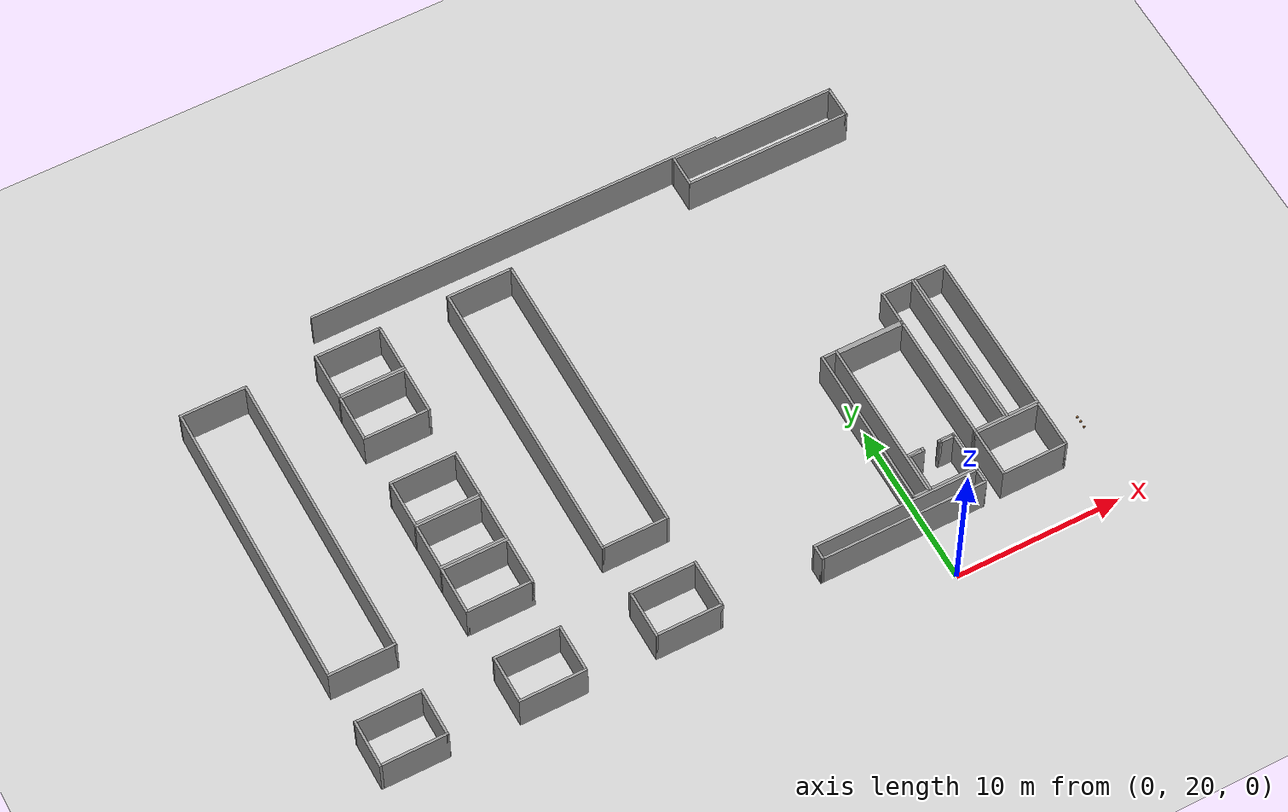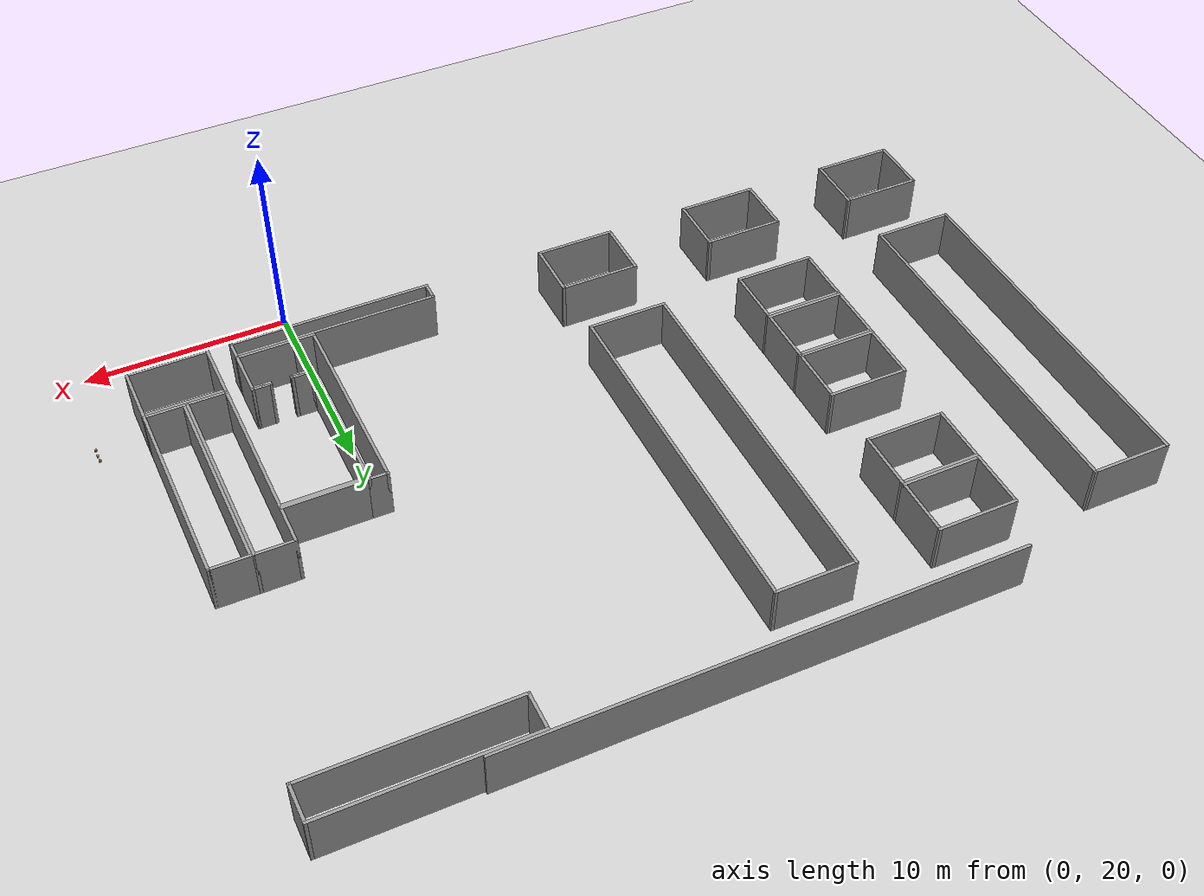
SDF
<sdf version="1.6">
 <world name="default">
  <model name="ground_plane">
   <static>1</static>
   <link name="link">
    <collision name="collision">
     <geometry><plane><normal>0 0 1</normal><size>105 105</size></plane></geometry>
     <surface>
      <contact><collide_bitmask>65535</collide_bitmask></contact>
      <friction><ode><mu>100</mu><mu2>50</mu2></ode></friction>
     </surface>
    </collision>
    <visual name="visual">
     <cast_shadows>0</cast_shadows>
     <geometry><plane><normal>0 0 1</normal><size>105 105</size></plane></geometry>
     <material>
      <script><uri>file://media/materials/scripts/gazebo.material</uri><name>Gazebo/Grey</name></script>
     </material>
    </visual>
   </link>
  </model>
  <model name="wall_25m_4">
   <pose>-10.9942 49.3463 0 0 -0 0</pose>
   <link name="Wall_28">
    <collision name="Wall_28_Collision">
     <geometry><box><size>25 0.15 2.5</size></box></geometry>
     <pose>0 0 1.25 0 -0 0</pose>
    </collision>
    <visual name="Wall_28_Visual">
     <pose>0 0 1.25 0 -0 0</pose>
     <geometry><box><size>25 0.15 2.5</size></box></geometry>
     <material>
      <script><uri>file://media/materials/scripts/gazebo.material</uri><name>Gazebo/Grey</name></script>
      <ambient>1 1 1 1</ambient>
     </material>
     <meta><layer>0</layer></meta>
    </visual>
   </link>
   <static>1</static>
  </model>
  <model name="base18x4_3">
   <pose>-30.4275 38.1058 0 0 -0 0</pose>
   <link name="Wall_6">
    <collision name="Wall_6_Collision">
     <geometry><box><size>18 0.15 2.5</size></box></geometry>
     <pose>0 0 1.25 0 -0 0</pose>
    </collision>
    <visual name="Wall_6_Visual">
     <pose>0 0 1.25 0 -0 0</pose>
     <geometry><box><size>18 0.15 2.5</size></box></geometry>
     <material>
      <script><uri>file://media/materials/scripts/gazebo.material</uri><name>Gazebo/Grey</name></script>
      <ambient>1 1 1 1</ambient>
     </material>
     <meta><layer>0</layer></meta>
    </visual>
    <pose>-1.925 0 0 0 -0 -1.5708</pose>
   </link>
   <link name="Wall_7">
    <collision name="Wall_7_Collision">
     <geometry><box><size>4 0.15 2.5</size></box></geometry>
     <pose>0 0 1.25 0 -0 0</pose>
    </collision>
    <visual name="Wall_7_Visual">
     <pose>0 0 1.25 0 -0 0</pose>
     <geometry><box><size>4 0.15 2.5</size></box></geometry>
     <material>
      <script><uri>file://media/materials/scripts/gazebo.material</uri><name>Gazebo/Grey</name></script>
      <ambient>1 1 1 1</ambient>
     </material>
     <meta><layer>0</layer></meta>
    </visual>
    <pose>0 -8.925 0 0 -0 0</pose>
   </link>
   <link name="Wall_8">
    <collision name="Wall_8_Collision">
     <geometry><box><size>18 0.15 2.5</size></box></geometry>
     <pose>0 0 1.25 0 -0 0</pose>
    </collision>
    <visual name="Wall_8_Visual">
     <pose>0 0 1.25 0 -0 0</pose>
     <geometry><box><size>18 0.15 2.5</size></box></geometry>
     <material>
      <script><uri>file://media/materials/scripts/gazebo.material</uri><name>Gazebo/Grey</name></script>
      <ambient>1 1 1 1</ambient>
     </material>
     <meta><layer>0</layer></meta>
    </visual>
    <pose>1.925 0 0 0 -0 1.5708</pose>
   </link>
   <link name="Wall_9">
    <collision name="Wall_9_Collision">
     <geometry><box><size>4 0.15 2.5</size></box></geometry>
     <pose>0 0 1.25 0 -0 0</pose>
    </collision>
    <visual name="Wall_9_Visual">
     <pose>0 0 1.25 0 -0 0</pose>
     <geometry><box><size>4 0.15 2.5</size></box></geometry>
     <material>
      <script><uri>file://media/materials/scripts/gazebo.material</uri><name>Gazebo/Grey</name></script>
      <ambient>1 1 1 1</ambient>
     </material>
     <meta><layer>0</layer></meta>
    </visual>
    <pose>0 8.925 0 0 -0 3.14159</pose>
   </link>
   <static>1</static>
  </model>
  <model name="base3x4_29">
   <pose>6.40581 24.5341 0 0 -0 0</pose>
   <link name="Wall_18">
    <collision name="Wall_18_Collision">
     <geometry><box><size>3 0.15 2.5</size></box></geometry>
     <pose>0 0 1.25 0 -0 0</pose>
    </collision>
    <visual name="Wall_18_Visual">
     <pose>0 0 1.25 0 -0 0</pose>
     <geometry><box><size>3 0.15 2.5</size></box></geometry>
     <material>
      <script><uri>file://media/materials/scripts/gazebo.material</uri><name>Gazebo/Grey</name></script>
      <ambient>1 1 1 1</ambient>
     </material>
     <meta><layer>0</layer></meta>
    </visual>
    <pose>-1.925 -0 0 0 -0 -1.5708</pose>
   </link>
   <link name="Wall_19">
    <collision name="Wall_19_Collision">
     <geometry><box><size>4 0.15 2.5</size></box></geometry>
     <pose>0 0 1.25 0 -0 0</pose>
    </collision>
    <visual name="Wall_19_Visual">
     <pose>0 0 1.25 0 -0 0</pose>
     <geometry><box><size>4 0.15 2.5</size></box></geometry>
     <material>
      <script><uri>file://media/materials/scripts/gazebo.material</uri><name>Gazebo/Grey</name></script>
      <ambient>1 1 1 1</ambient>
     </material>
     <meta><layer>0</layer></meta>
    </visual>
    <pose>-0 -1.425 0 0 -0 0</pose>
   </link>
   <link name="Wall_20">
    <collision name="Wall_20_Collision">
     <geometry><box><size>3 0.15 2.5</size></box></geometry>
     <pose>0 0 1.25 0 -0 0</pose>
    </collision>
    <visual name="Wall_20_Visual">
     <pose>0 0 1.25 0 -0 0</pose>
     <geometry><box><size>3 0.15 2.5</size></box></geometry>
     <material>
      <script><uri>file://media/materials/scripts/gazebo.material</uri><name>Gazebo/Grey</name></script>
      <ambient>1 1 1 1</ambient>
     </material>
     <meta><layer>0</layer></meta>
    </visual>
    <pose>1.925 -0 0 0 -0 1.5708</pose>
   </link>
   <link name="Wall_21">
    <collision name="Wall_21_Collision">
     <geometry><box><size>4 0.15 2.5</size></box></geometry>
     <pose>0 0 1.25 0 -0 0</pose>
    </collision>
    <visual name="Wall_21_Visual">
     <pose>0 0 1.25 0 -0 0</pose>
     <geometry><box><size>4 0.15 2.5</size></box></geometry>
     <material>
      <script><uri>file://media/materials/scripts/gazebo.material</uri><name>Gazebo/Grey</name></script>
      <ambient>1 1 1 1</ambient>
     </material>
     <meta><layer>0</layer></meta>
    </visual>
    <pose>-0 1.425 0 0 -0 3.14159</pose>
   </link>
   <static>1</static>
  </model>
  <model name="base10x2_0">
   <pose>5.40521 31.0336 0 0 -0 0</pose>
   <link name="Wall_20">
    <collision name="Wall_20_Collision">
     <geometry><box><size>2 0.15 2.5</size></box></geometry>
     <pose>0 0 1.25 0 -0 0</pose>
    </collision>
    <visual name="Wall_20_Visual">
     <pose>0 0 1.25 0 -0 0</pose>
     <geometry><box><size>2 0.15 2.5</size></box></geometry>
     <material>
      <script><uri>file://media/materials/scripts/gazebo.material</uri><name>Gazebo/Grey</name></script>
      <ambient>1 1 1 1</ambient>
     </material>
     <meta><layer>0</layer></meta>
    </visual>
    <pose>0 4.925 0 0 -0 0</pose>
   </link>
   <link name="Wall_21">
    <collision name="Wall_21_Collision">
     <geometry><box><size>10 0.15 2.5</size></box></geometry>
     <pose>0 0 1.25 0 -0 0</pose>
    </collision>
    <visual name="Wall_21_Visual">
     <pose>0 0 1.25 0 -0 0</pose>
     <geometry><box><size>10 0.15 2.5</size></box></geometry>
     <material>
      <script><uri>file://media/materials/scripts/gazebo.material</uri><name>Gazebo/Grey</name></script>
      <ambient>1 1 1 1</ambient>
     </material>
     <meta><layer>0</layer></meta>
    </visual>
    <pose>0.925 -0 0 0 -0 -1.5708</pose>
   </link>
   <link name="Wall_22">
    <collision name="Wall_22_Collision">
     <geometry><box><size>2 0.15 2.5</size></box></geometry>
     <pose>0 0 1.25 0 -0 0</pose>
    </collision>
    <visual name="Wall_22_Visual">
     <pose>0 0 1.25 0 -0 0</pose>
     <geometry><box><size>2 0.15 2.5</size></box></geometry>
     <material>
      <script><uri>file://media/materials/scripts/gazebo.material</uri><name>Gazebo/Grey</name></script>
      <ambient>1 1 1 1</ambient>
     </material>
     <meta><layer>0</layer></meta>
    </visual>
    <pose>0 -4.925 0 0 -0 3.14159</pose>
   </link>
   <link name="Wall_23">
    <collision name="Wall_23_Collision">
     <geometry><box><size>10 0.15 2.5</size></box></geometry>
     <pose>0 0 1.25 0 -0 0</pose>
    </collision>
    <visual name="Wall_23_Visual">
     <pose>0 0 1.25 0 -0 0</pose>
     <geometry><box><size>10 0.15 2.5</size></box></geometry>
     <material>
      <script><uri>file://media/materials/scripts/gazebo.material</uri><name>Gazebo/Grey</name></script>
      <ambient>1 1 1 1</ambient>
     </material>
     <meta><layer>0</layer></meta>
    </visual>
    <pose>-0.925 -0 0 0 -0 1.5708</pose>
   </link>
   <static>1</static>
  </model>
  <model name="wood_cube_10cm_3">
   <link name="link">
    <pose>0 0 0.05 0 -0 0</pose>
    <inertial>
     <mass>0.5167</mass>
     <inertia>
      <ixx>0.000861167</ixx>
      <ixy>0</ixy>
      <ixz>0</ixz>
      <iyy>0.000861167</iyy>
      <iyz>0</iyz>
      <izz>0.000861167</izz>
     </inertia>
    </inertial>
    <collision name="collision">
     <geometry><box><size>0.1 0.1 0.1</size></box></geometry>
     <surface>
      <contact>
       <poissons_ratio>0.347</poissons_ratio>
       <elastic_modulus>8.8e+09</elastic_modulus>
       <ode><kp>100000</kp><kd>100</kd><max_vel>100</max_vel><min_depth>0.001</min_depth></ode>
      </contact>
      <friction>
       <torsional>
        <coefficient>1</coefficient>
        <use_patch_radius>0</use_patch_radius>
        <surface_radius>0.01</surface_radius>
       </torsional>
      </friction>
     </surface>
    </collision>
    <visual name="visual">
     <geometry><box><size>0.1 0.1 0.1</size></box></geometry>
     <material>
      <script><uri>file://media/materials/scripts/gazebo.material</uri><name>Gazebo/Wood</name></script>
     </material>
    </visual>
   </link>
   <pose>10.6607 24.7274 -0.001013 0 0 -1.09026</pose>
  </model>
  <model name="wood_cube_10cm_4">
   <link name="link">
    <pose>0 0 0.05 0 -0 0</pose>
    <inertial>
     <mass>0.5167</mass>
     <inertia>
      <ixx>0.000861167</ixx>
      <ixy>0</ixy>
      <ixz>0</ixz>
      <iyy>0.000861167</iyy>
      <iyz>0</iyz>
      <izz>0.000861167</izz>
     </inertia>
    </inertial>
    <collision name="collision">
     <geometry><box><size>0.1 0.1 0.1</size></box></geometry>
     <surface>
      <contact>
       <poissons_ratio>0.347</poissons_ratio>
       <elastic_modulus>8.8e+09</elastic_modulus>
       <ode><kp>100000</kp><kd>100</kd><max_vel>100</max_vel><min_depth>0.001</min_depth></ode>
      </contact>
      <friction>
       <torsional>
        <coefficient>1</coefficient>
        <use_patch_radius>0</use_patch_radius>
        <surface_radius>0.01</surface_radius>
       </torsional>
      </friction>
     </surface>
    </collision>
    <visual name="visual">
     <geometry><box><size>0.1 0.1 0.1</size></box></geometry>
     <material>
      <script><uri>file://media/materials/scripts/gazebo.material</uri><name>Gazebo/Wood</name></script>
     </material>
    </visual>
   </link>
   <pose>10.6691 25.1156 -0.001013 0 -0 0</pose>
  </model>
  <model name="wood_cube_10cm_5">
   <link name="link">
    <pose>0 0 0.05 0 -0 0</pose>
    <inertial>
     <mass>0.5167</mass>
     <inertia>
      <ixx>0.000861167</ixx>
      <ixy>0</ixy>
      <ixz>0</ixz>
      <iyy>0.000861167</iyy>
      <iyz>0</iyz>
      <izz>0.000861167</izz>
     </inertia>
    </inertial>
    <collision name="collision">
     <geometry><box><size>0.1 0.1 0.1</size></box></geometry>
     <surface>
      <contact>
       <poissons_ratio>0.347</poissons_ratio>
       <elastic_modulus>8.8e+09</elastic_modulus>
       <ode><kp>100000</kp><kd>100</kd><max_vel>100</max_vel><min_depth>0.001</min_depth></ode>
      </contact>
      <friction>
       <torsional>
        <coefficient>1</coefficient>
        <use_patch_radius>0</use_patch_radius>
        <surface_radius>0.01</surface_radius>
       </torsional>
      </friction>
     </surface>
    </collision>
    <visual name="visual">
     <geometry><box><size>0.1 0.1 0.1</size></box></geometry>
     <material>
      <script><uri>file://media/materials/scripts/gazebo.material</uri><name>Gazebo/Wood</name></script>
     </material>
    </visual>
   </link>
   <pose>10.6522 25.4397 -0.001013 0 -0 0</pose>
  </model>
  <model name="base10x2_1">
   <pose>7.40132 31.0288 0 0 -0 0</pose>
   <link name="Wall_20">
    <collision name="Wall_20_Collision">
     <geometry><box><size>2 0.15 2.5</size></box></geometry>
     <pose>0 0 1.25 0 -0 0</pose>
    </collision>
    <visual name="Wall_20_Visual">
     <pose>0 0 1.25 0 -0 0</pose>
     <geometry><box><size>2 0.15 2.5</size></box></geometry>
     <material>
      <script><uri>file://media/materials/scripts/gazebo.material</uri><name>Gazebo/Grey</name></script>
      <ambient>1 1 1 1</ambient>
     </material>
     <meta><layer>0</layer></meta>
    </visual>
    <pose>0 4.925 0 0 -0 0</pose>
   </link>
   <link name="Wall_21">
    <collision name="Wall_21_Collision">
     <geometry><box><size>10 0.15 2.5</size></box></geometry>
     <pose>0 0 1.25 0 -0 0</pose>
    </collision>
    <visual name="Wall_21_Visual">
     <pose>0 0 1.25 0 -0 0</pose>
     <geometry><box><size>10 0.15 2.5</size></box></geometry>
     <material>
      <script><uri>file://media/materials/scripts/gazebo.material</uri><name>Gazebo/Grey</name></script>
      <ambient>1 1 1 1</ambient>
     </material>
     <meta><layer>0</layer></meta>
    </visual>
    <pose>0.925 -0 0 0 -0 -1.5708</pose>
   </link>
   <link name="Wall_22">
    <collision name="Wall_22_Collision">
     <geometry><box><size>2 0.15 2.5</size></box></geometry>
     <pose>0 0 1.25 0 -0 0</pose>
    </collision>
    <visual name="Wall_22_Visual">
     <pose>0 0 1.25 0 -0 0</pose>
     <geometry><box><size>2 0.15 2.5</size></box></geometry>
     <material>
      <script><uri>file://media/materials/scripts/gazebo.material</uri><name>Gazebo/Grey</name></script>
      <ambient>1 1 1 1</ambient>
     </material>
     <meta><layer>0</layer></meta>
    </visual>
    <pose>0 -4.925 0 0 -0 3.14159</pose>
   </link>
   <link name="Wall_23">
    <collision name="Wall_23_Collision">
     <geometry><box><size>10 0.15 2.5</size></box></geometry>
     <pose>0 0 1.25 0 -0 0</pose>
    </collision>
    <visual name="Wall_23_Visual">
     <pose>0 0 1.25 0 -0 0</pose>
     <geometry><box><size>10 0.15 2.5</size></box></geometry>
     <material>
      <script><uri>file://media/materials/scripts/gazebo.material</uri><name>Gazebo/Grey</name></script>
      <ambient>1 1 1 1</ambient>
     </material>
     <meta><layer>0</layer></meta>
    </visual>
    <pose>-0.925 -0 0 0 -0 1.5708</pose>
   </link>
   <static>1</static>
  </model>
  <model name="base18x4_4">
   <pose>-14.4191 38.0948 0 0 -0 0</pose>
   <link name="Wall_6">
    <collision name="Wall_6_Collision">
     <geometry><box><size>18 0.15 2.5</size></box></geometry>
     <pose>0 0 1.25 0 -0 0</pose>
    </collision>
    <visual name="Wall_6_Visual">
     <pose>0 0 1.25 0 -0 0</pose>
     <geometry><box><size>18 0.15 2.5</size></box></geometry>
     <material>
      <script><uri>file://media/materials/scripts/gazebo.material</uri><name>Gazebo/Grey</name></script>
      <ambient>1 1 1 1</ambient>
     </material>
     <meta><layer>0</layer></meta>
    </visual>
    <pose>-1.925 0 0 0 -0 -1.5708</pose>
   </link>
   <link name="Wall_7">
    <collision name="Wall_7_Collision">
     <geometry><box><size>4 0.15 2.5</size></box></geometry>
     <pose>0 0 1.25 0 -0 0</pose>
    </collision>
    <visual name="Wall_7_Visual">
     <pose>0 0 1.25 0 -0 0</pose>
     <geometry><box><size>4 0.15 2.5</size></box></geometry>
     <material>
      <script><uri>file://media/materials/scripts/gazebo.material</uri><name>Gazebo/Grey</name></script>
      <ambient>1 1 1 1</ambient>
     </material>
     <meta><layer>0</layer></meta>
    </visual>
    <pose>0 -8.925 0 0 -0 0</pose>
   </link>
   <link name="Wall_8">
    <collision name="Wall_8_Collision">
     <geometry><box><size>18 0.15 2.5</size></box></geometry>
     <pose>0 0 1.25 0 -0 0</pose>
    </collision>
    <visual name="Wall_8_Visual">
     <pose>0 0 1.25 0 -0 0</pose>
     <geometry><box><size>18 0.15 2.5</size></box></geometry>
     <material>
      <script><uri>file://media/materials/scripts/gazebo.material</uri><name>Gazebo/Grey</name></script>
      <ambient>1 1 1 1</ambient>
     </material>
     <meta><layer>0</layer></meta>
    </visual>
    <pose>1.925 0 0 0 -0 1.5708</pose>
   </link>
   <link name="Wall_9">
    <collision name="Wall_9_Collision">
     <geometry><box><size>4 0.15 2.5</size></box></geometry>
     <pose>0 0 1.25 0 -0 0</pose>
    </collision>
    <visual name="Wall_9_Visual">
     <pose>0 0 1.25 0 -0 0</pose>
     <geometry><box><size>4 0.15 2.5</size></box></geometry>
     <material>
      <script><uri>file://media/materials/scripts/gazebo.material</uri><name>Gazebo/Grey</name></script>
      <ambient>1 1 1 1</ambient>
     </material>
     <meta><layer>0</layer></meta>
    </visual>
    <pose>0 8.925 0 0 -0 3.14159</pose>
   </link>
   <static>1</static>
  </model>
  <model name="base3x4_57">
   <pose>-14.4138 24.637 0 0 -0 0</pose>
   <link name="Wall_18">
    <collision name="Wall_18_Collision">
     <geometry><box><size>3 0.15 2.5</size></box></geometry>
     <pose>0 0 1.25 0 -0 0</pose>
    </collision>
    <visual name="Wall_18_Visual">
     <pose>0 0 1.25 0 -0 0</pose>
     <geometry><box><size>3 0.15 2.5</size></box></geometry>
     <material>
      <script><uri>file://media/materials/scripts/gazebo.material</uri><name>Gazebo/Grey</name></script>
      <ambient>1 1 1 1</ambient>
     </material>
     <meta><layer>0</layer></meta>
    </visual>
    <pose>-1.925 -0 0 0 -0 -1.5708</pose>
   </link>
   <link name="Wall_19">
    <collision name="Wall_19_Collision">
     <geometry><box><size>4 0.15 2.5</size></box></geometry>
     <pose>0 0 1.25 0 -0 0</pose>
    </collision>
    <visual name="Wall_19_Visual">
     <pose>0 0 1.25 0 -0 0</pose>
     <geometry><box><size>4 0.15 2.5</size></box></geometry>
     <material>
      <script><uri>file://media/materials/scripts/gazebo.material</uri><name>Gazebo/Grey</name></script>
      <ambient>1 1 1 1</ambient>
     </material>
     <meta><layer>0</layer></meta>
    </visual>
    <pose>-0 -1.425 0 0 -0 0</pose>
   </link>
   <link name="Wall_20">
    <collision name="Wall_20_Collision">
     <geometry><box><size>3 0.15 2.5</size></box></geometry>
     <pose>0 0 1.25 0 -0 0</pose>
    </collision>
    <visual name="Wall_20_Visual">
     <pose>0 0 1.25 0 -0 0</pose>
     <geometry><box><size>3 0.15 2.5</size></box></geometry>
     <material>
      <script><uri>file://media/materials/scripts/gazebo.material</uri><name>Gazebo/Grey</name></script>
      <ambient>1 1 1 1</ambient>
     </material>
     <meta><layer>0</layer></meta>
    </visual>
    <pose>1.925 -0 0 0 -0 1.5708</pose>
   </link>
   <link name="Wall_21">
    <collision name="Wall_21_Collision">
     <geometry><box><size>4 0.15 2.5</size></box></geometry>
     <pose>0 0 1.25 0 -0 0</pose>
    </collision>
    <visual name="Wall_21_Visual">
     <pose>0 0 1.25 0 -0 0</pose>
     <geometry><box><size>4 0.15 2.5</size></box></geometry>
     <material>
      <script><uri>file://media/materials/scripts/gazebo.material</uri><name>Gazebo/Grey</name></script>
      <ambient>1 1 1 1</ambient>
     </material>
     <meta><layer>0</layer></meta>
    </visual>
    <pose>-0 1.425 0 0 -0 3.14159</pose>
   </link>
   <static>1</static>
  </model>
  <model name="base3x4_80">
   <pose>-22.4387 24.5873 0 0 -0 0</pose>
   <link name="Wall_18">
    <collision name="Wall_18_Collision">
     <geometry><box><size>3 0.15 2.5</size></box></geometry>
     <pose>0 0 1.25 0 -0 0</pose>
    </collision>
    <visual name="Wall_18_Visual">
     <pose>0 0 1.25 0 -0 0</pose>
     <geometry><box><size>3 0.15 2.5</size></box></geometry>
     <material>
      <script><uri>file://media/materials/scripts/gazebo.material</uri><name>Gazebo/Grey</name></script>
      <ambient>1 1 1 1</ambient>
     </material>
     <meta><layer>0</layer></meta>
    </visual>
    <pose>-1.925 -0 0 0 -0 -1.5708</pose>
   </link>
   <link name="Wall_19">
    <collision name="Wall_19_Collision">
     <geometry><box><size>4 0.15 2.5</size></box></geometry>
     <pose>0 0 1.25 0 -0 0</pose>
    </collision>
    <visual name="Wall_19_Visual">
     <pose>0 0 1.25 0 -0 0</pose>
     <geometry><box><size>4 0.15 2.5</size></box></geometry>
     <material>
      <script><uri>file://media/materials/scripts/gazebo.material</uri><name>Gazebo/Grey</name></script>
      <ambient>1 1 1 1</ambient>
     </material>
     <meta><layer>0</layer></meta>
    </visual>
    <pose>-0 -1.425 0 0 -0 0</pose>
   </link>
   <link name="Wall_20">
    <collision name="Wall_20_Collision">
     <geometry><box><size>3 0.15 2.5</size></box></geometry>
     <pose>0 0 1.25 0 -0 0</pose>
    </collision>
    <visual name="Wall_20_Visual">
     <pose>0 0 1.25 0 -0 0</pose>
     <geometry><box><size>3 0.15 2.5</size></box></geometry>
     <material>
      <script><uri>file://media/materials/scripts/gazebo.material</uri><name>Gazebo/Grey</name></script>
      <ambient>1 1 1 1</ambient>
     </material>
     <meta><layer>0</layer></meta>
    </visual>
    <pose>1.925 -0 0 0 -0 1.5708</pose>
   </link>
   <link name="Wall_21">
    <collision name="Wall_21_Collision">
     <geometry><box><size>4 0.15 2.5</size></box></geometry>
     <pose>0 0 1.25 0 -0 0</pose>
    </collision>
    <visual name="Wall_21_Visual">
     <pose>0 0 1.25 0 -0 0</pose>
     <geometry><box><size>4 0.15 2.5</size></box></geometry>
     <material>
      <script><uri>file://media/materials/scripts/gazebo.material</uri><name>Gazebo/Grey</name></script>
      <ambient>1 1 1 1</ambient>
     </material>
     <meta><layer>0</layer></meta>
    </visual>
    <pose>-0 1.425 0 0 -0 3.14159</pose>
   </link>
   <static>1</static>
  </model>
  <model name="base3x4_85">
   <pose>-30.4252 24.6539 0 0 -0 0</pose>
   <link name="Wall_18">
    <collision name="Wall_18_Collision">
     <geometry><box><size>3 0.15 2.5</size></box></geometry>
     <pose>0 0 1.25 0 -0 0</pose>
    </collision>
    <visual name="Wall_18_Visual">
     <pose>0 0 1.25 0 -0 0</pose>
     <geometry><box><size>3 0.15 2.5</size></box></geometry>
     <material>
      <script><uri>file://media/materials/scripts/gazebo.material</uri><name>Gazebo/Grey</name></script>
      <ambient>1 1 1 1</ambient>
     </material>
     <meta><layer>0</layer></meta>
    </visual>
    <pose>-1.925 -0 0 0 -0 -1.5708</pose>
   </link>
   <link name="Wall_19">
    <collision name="Wall_19_Collision">
     <geometry><box><size>4 0.15 2.5</size></box></geometry>
     <pose>0 0 1.25 0 -0 0</pose>
    </collision>
    <visual name="Wall_19_Visual">
     <pose>0 0 1.25 0 -0 0</pose>
     <geometry><box><size>4 0.15 2.5</size></box></geometry>
     <material>
      <script><uri>file://media/materials/scripts/gazebo.material</uri><name>Gazebo/Grey</name></script>
      <ambient>1 1 1 1</ambient>
     </material>
     <meta><layer>0</layer></meta>
    </visual>
    <pose>-0 -1.425 0 0 -0 0</pose>
   </link>
   <link name="Wall_20">
    <collision name="Wall_20_Collision">
     <geometry><box><size>3 0.15 2.5</size></box></geometry>
     <pose>0 0 1.25 0 -0 0</pose>
    </collision>
    <visual name="Wall_20_Visual">
     <pose>0 0 1.25 0 -0 0</pose>
     <geometry><box><size>3 0.15 2.5</size></box></geometry>
     <material>
      <script><uri>file://media/materials/scripts/gazebo.material</uri><name>Gazebo/Grey</name></script>
      <ambient>1 1 1 1</ambient>
     </material>
     <meta><layer>0</layer></meta>
    </visual>
    <pose>1.925 -0 0 0 -0 1.5708</pose>
   </link>
   <link name="Wall_21">
    <collision name="Wall_21_Collision">
     <geometry><box><size>4 0.15 2.5</size></box></geometry>
     <pose>0 0 1.25 0 -0 0</pose>
    </collision>
    <visual name="Wall_21_Visual">
     <pose>0 0 1.25 0 -0 0</pose>
     <geometry><box><size>4 0.15 2.5</size></box></geometry>
     <material>
      <script><uri>file://media/materials/scripts/gazebo.material</uri><name>Gazebo/Grey</name></script>
      <ambient>1 1 1 1</ambient>
     </material>
     <meta><layer>0</layer></meta>
    </visual>
    <pose>-0 1.425 0 0 -0 3.14159</pose>
   </link>
   <static>1</static>
  </model>
  <model name="base2x10_0">
   <pose>3.694 48.2896 0 0 -0 0</pose>
   <link name="Wall_10">
    <collision name="Wall_10_Collision">
     <geometry><box><size>2 0.15 2.5</size></box></geometry>
     <pose>0 0 1.25 0 -0 0</pose>
    </collision>
    <visual name="Wall_10_Visual">
     <pose>0 0 1.25 0 -0 0</pose>
     <geometry><box><size>2 0.15 2.5</size></box></geometry>
     <material>
      <script><uri>file://media/materials/scripts/gazebo.material</uri><name>Gazebo/Grey</name></script>
      <ambient>1 1 1 1</ambient>
     </material>
     <meta><layer>0</layer></meta>
    </visual>
    <pose>-4.925 0 0 0 -0 -1.5708</pose>
   </link>
   <link name="Wall_11">
    <collision name="Wall_11_Collision">
     <geometry><box><size>10 0.15 2.5</size></box></geometry>
     <pose>0 0 1.25 0 -0 0</pose>
    </collision>
    <visual name="Wall_11_Visual">
     <pose>0 0 1.25 0 -0 0</pose>
     <geometry><box><size>10 0.15 2.5</size></box></geometry>
     <material>
      <script><uri>file://media/materials/scripts/gazebo.material</uri><name>Gazebo/Grey</name></script>
      <ambient>1 1 1 1</ambient>
     </material>
     <meta><layer>0</layer></meta>
    </visual>
    <pose>0 -0.925 0 0 -0 0</pose>
   </link>
   <link name="Wall_12">
    <collision name="Wall_12_Collision">
     <geometry><box><size>2 0.15 2.5</size></box></geometry>
     <pose>0 0 1.25 0 -0 0</pose>
    </collision>
    <visual name="Wall_12_Visual">
     <pose>0 0 1.25 0 -0 0</pose>
     <geometry><box><size>2 0.15 2.5</size></box></geometry>
     <material>
      <script><uri>file://media/materials/scripts/gazebo.material</uri><name>Gazebo/Grey</name></script>
      <ambient>1 1 1 1</ambient>
     </material>
     <meta><layer>0</layer></meta>
    </visual>
    <pose>4.925 0 0 0 -0 1.5708</pose>
   </link>
   <link name="Wall_13">
    <collision name="Wall_13_Collision">
     <geometry><box><size>10 0.15 2.5</size></box></geometry>
     <pose>0 0 1.25 0 -0 0</pose>
    </collision>
    <visual name="Wall_13_Visual">
     <pose>0 0 1.25 0 -0 0</pose>
     <geometry><box><size>10 0.15 2.5</size></box></geometry>
     <material>
      <script><uri>file://media/materials/scripts/gazebo.material</uri><name>Gazebo/Grey</name></script>
      <ambient>1 1 1 1</ambient>
     </material>
     <meta><layer>0</layer></meta>
    </visual>
    <pose>0 0.925 0 0 -0 3.14159</pose>
   </link>
   <static>1</static>
  </model>
  <model name="base3x4_89">
   <pose>-22.4372 30.571 0 0 -0 0</pose>
   <link name="Wall_18">
    <collision name="Wall_18_Collision">
     <geometry><box><size>3 0.15 2.5</size></box></geometry>
     <pose>0 0 1.25 0 -0 0</pose>
    </collision>
    <visual name="Wall_18_Visual">
     <pose>0 0 1.25 0 -0 0</pose>
     <geometry><box><size>3 0.15 2.5</size></box></geometry>
     <material>
      <script><uri>file://media/materials/scripts/gazebo.material</uri><name>Gazebo/Grey</name></script>
      <ambient>1 1 1 1</ambient>
     </material>
     <meta><layer>0</layer></meta>
    </visual>
    <pose>-1.925 -0 0 0 -0 -1.5708</pose>
   </link>
   <link name="Wall_19">
    <collision name="Wall_19_Collision">
     <geometry><box><size>4 0.15 2.5</size></box></geometry>
     <pose>0 0 1.25 0 -0 0</pose>
    </collision>
    <visual name="Wall_19_Visual">
     <pose>0 0 1.25 0 -0 0</pose>
     <geometry><box><size>4 0.15 2.5</size></box></geometry>
     <material>
      <script><uri>file://media/materials/scripts/gazebo.material</uri><name>Gazebo/Grey</name></script>
      <ambient>1 1 1 1</ambient>
     </material>
     <meta><layer>0</layer></meta>
    </visual>
    <pose>-0 -1.425 0 0 -0 0</pose>
   </link>
   <link name="Wall_20">
    <collision name="Wall_20_Collision">
     <geometry><box><size>3 0.15 2.5</size></box></geometry>
     <pose>0 0 1.25 0 -0 0</pose>
    </collision>
    <visual name="Wall_20_Visual">
     <pose>0 0 1.25 0 -0 0</pose>
     <geometry><box><size>3 0.15 2.5</size></box></geometry>
     <material>
      <script><uri>file://media/materials/scripts/gazebo.material</uri><name>Gazebo/Grey</name></script>
      <ambient>1 1 1 1</ambient>
     </material>
     <meta><layer>0</layer></meta>
    </visual>
    <pose>1.925 -0 0 0 -0 1.5708</pose>
   </link>
   <link name="Wall_21">
    <collision name="Wall_21_Collision">
     <geometry><box><size>4 0.15 2.5</size></box></geometry>
     <pose>0 0 1.25 0 -0 0</pose>
    </collision>
    <visual name="Wall_21_Visual">
     <pose>0 0 1.25 0 -0 0</pose>
     <geometry><box><size>4 0.15 2.5</size></box></geometry>
     <material>
      <script><uri>file://media/materials/scripts/gazebo.material</uri><name>Gazebo/Grey</name></script>
      <ambient>1 1 1 1</ambient>
     </material>
     <meta><layer>0</layer></meta>
    </visual>
    <pose>-0 1.425 0 0 -0 3.14159</pose>
   </link>
   <static>1</static>
  </model>
  <model name="base3x4_90">
   <pose>-22.4383 33.565 0 0 -0 0</pose>
   <link name="Wall_18">
    <collision name="Wall_18_Collision">
     <geometry><box><size>3 0.15 2.5</size></box></geometry>
     <pose>0 0 1.25 0 -0 0</pose>
    </collision>
    <visual name="Wall_18_Visual">
     <pose>0 0 1.25 0 -0 0</pose>
     <geometry><box><size>3 0.15 2.5</size></box></geometry>
     <material>
      <script><uri>file://media/materials/scripts/gazebo.material</uri><name>Gazebo/Grey</name></script>
      <ambient>1 1 1 1</ambient>
     </material>
     <meta><layer>0</layer></meta>
    </visual>
    <pose>-1.925 -0 0 0 -0 -1.5708</pose>
   </link>
   <link name="Wall_19">
    <collision name="Wall_19_Collision">
     <geometry><box><size>4 0.15 2.5</size></box></geometry>
     <pose>0 0 1.25 0 -0 0</pose>
    </collision>
    <visual name="Wall_19_Visual">
     <pose>0 0 1.25 0 -0 0</pose>
     <geometry><box><size>4 0.15 2.5</size></box></geometry>
     <material>
      <script><uri>file://media/materials/scripts/gazebo.material</uri><name>Gazebo/Grey</name></script>
      <ambient>1 1 1 1</ambient>
     </material>
     <meta><layer>0</layer></meta>
    </visual>
    <pose>-0 -1.425 0 0 -0 0</pose>
   </link>
   <link name="Wall_20">
    <collision name="Wall_20_Collision">
     <geometry><box><size>3 0.15 2.5</size></box></geometry>
     <pose>0 0 1.25 0 -0 0</pose>
    </collision>
    <visual name="Wall_20_Visual">
     <pose>0 0 1.25 0 -0 0</pose>
     <geometry><box><size>3 0.15 2.5</size></box></geometry>
     <material>
      <script><uri>file://media/materials/scripts/gazebo.material</uri><name>Gazebo/Grey</name></script>
      <ambient>1 1 1 1</ambient>
     </material>
     <meta><layer>0</layer></meta>
    </visual>
    <pose>1.925 -0 0 0 -0 1.5708</pose>
   </link>
   <link name="Wall_21">
    <collision name="Wall_21_Collision">
     <geometry><box><size>4 0.15 2.5</size></box></geometry>
     <pose>0 0 1.25 0 -0 0</pose>
    </collision>
    <visual name="Wall_21_Visual">
     <pose>0 0 1.25 0 -0 0</pose>
     <geometry><box><size>4 0.15 2.5</size></box></geometry>
     <material>
      <script><uri>file://media/materials/scripts/gazebo.material</uri><name>Gazebo/Grey</name></script>
      <ambient>1 1 1 1</ambient>
     </material>
     <meta><layer>0</layer></meta>
    </visual>
    <pose>-0 1.425 0 0 -0 3.14159</pose>
   </link>
   <static>1</static>
  </model>
  <model name="base3x4_91">
   <pose>-22.4355 36.5596 0 0 -0 0</pose>
   <link name="Wall_18">
    <collision name="Wall_18_Collision">
     <geometry><box><size>3 0.15 2.5</size></box></geometry>
     <pose>0 0 1.25 0 -0 0</pose>
    </collision>
    <visual name="Wall_18_Visual">
     <pose>0 0 1.25 0 -0 0</pose>
     <geometry><box><size>3 0.15 2.5</size></box></geometry>
     <material>
      <script><uri>file://media/materials/scripts/gazebo.material</uri><name>Gazebo/Grey</name></script>
      <ambient>1 1 1 1</ambient>
     </material>
     <meta><layer>0</layer></meta>
    </visual>
    <pose>-1.925 -0 0 0 -0 -1.5708</pose>
   </link>
   <link name="Wall_19">
    <collision name="Wall_19_Collision">
     <geometry><box><size>4 0.15 2.5</size></box></geometry>
     <pose>0 0 1.25 0 -0 0</pose>
    </collision>
    <visual name="Wall_19_Visual">
     <pose>0 0 1.25 0 -0 0</pose>
     <geometry><box><size>4 0.15 2.5</size></box></geometry>
     <material>
      <script><uri>file://media/materials/scripts/gazebo.material</uri><name>Gazebo/Grey</name></script>
      <ambient>1 1 1 1</ambient>
     </material>
     <meta><layer>0</layer></meta>
    </visual>
    <pose>-0 -1.425 0 0 -0 0</pose>
   </link>
   <link name="Wall_20">
    <collision name="Wall_20_Collision">
     <geometry><box><size>3 0.15 2.5</size></box></geometry>
     <pose>0 0 1.25 0 -0 0</pose>
    </collision>
    <visual name="Wall_20_Visual">
     <pose>0 0 1.25 0 -0 0</pose>
     <geometry><box><size>3 0.15 2.5</size></box></geometry>
     <material>
      <script><uri>file://media/materials/scripts/gazebo.material</uri><name>Gazebo/Grey</name></script>
      <ambient>1 1 1 1</ambient>
     </material>
     <meta><layer>0</layer></meta>
    </visual>
    <pose>1.925 -0 0 0 -0 1.5708</pose>
   </link>
   <link name="Wall_21">
    <collision name="Wall_21_Collision">
     <geometry><box><size>4 0.15 2.5</size></box></geometry>
     <pose>0 0 1.25 0 -0 0</pose>
    </collision>
    <visual name="Wall_21_Visual">
     <pose>0 0 1.25 0 -0 0</pose>
     <geometry><box><size>4 0.15 2.5</size></box></geometry>
     <material>
      <script><uri>file://media/materials/scripts/gazebo.material</uri><name>Gazebo/Grey</name></script>
      <ambient>1 1 1 1</ambient>
     </material>
     <meta><layer>0</layer></meta>
    </visual>
    <pose>-0 1.425 0 0 -0 3.14159</pose>
   </link>
   <static>1</static>
  </model>
  <model name="base3x4_94">
   <pose>-22.4306 42.5564 0 0 -0 0</pose>
   <link name="Wall_18">
    <collision name="Wall_18_Collision">
     <geometry><box><size>3 0.15 2.5</size></box></geometry>
     <pose>0 0 1.25 0 -0 0</pose>
    </collision>
    <visual name="Wall_18_Visual">
     <pose>0 0 1.25 0 -0 0</pose>
     <geometry><box><size>3 0.15 2.5</size></box></geometry>
     <material>
      <script><uri>file://media/materials/scripts/gazebo.material</uri><name>Gazebo/Grey</name></script>
      <ambient>1 1 1 1</ambient>
     </material>
     <meta><layer>0</layer></meta>
    </visual>
    <pose>-1.925 -0 0 0 -0 -1.5708</pose>
   </link>
   <link name="Wall_19">
    <collision name="Wall_19_Collision">
     <geometry><box><size>4 0.15 2.5</size></box></geometry>
     <pose>0 0 1.25 0 -0 0</pose>
    </collision>
    <visual name="Wall_19_Visual">
     <pose>0 0 1.25 0 -0 0</pose>
     <geometry><box><size>4 0.15 2.5</size></box></geometry>
     <material>
      <script><uri>file://media/materials/scripts/gazebo.material</uri><name>Gazebo/Grey</name></script>
      <ambient>1 1 1 1</ambient>
     </material>
     <meta><layer>0</layer></meta>
    </visual>
    <pose>-0 -1.425 0 0 -0 0</pose>
   </link>
   <link name="Wall_20">
    <collision name="Wall_20_Collision">
     <geometry><box><size>3 0.15 2.5</size></box></geometry>
     <pose>0 0 1.25 0 -0 0</pose>
    </collision>
    <visual name="Wall_20_Visual">
     <pose>0 0 1.25 0 -0 0</pose>
     <geometry><box><size>3 0.15 2.5</size></box></geometry>
     <material>
      <script><uri>file://media/materials/scripts/gazebo.material</uri><name>Gazebo/Grey</name></script>
      <ambient>1 1 1 1</ambient>
     </material>
     <meta><layer>0</layer></meta>
    </visual>
    <pose>1.925 -0 0 0 -0 1.5708</pose>
   </link>
   <link name="Wall_21">
    <collision name="Wall_21_Collision">
     <geometry><box><size>4 0.15 2.5</size></box></geometry>
     <pose>0 0 1.25 0 -0 0</pose>
    </collision>
    <visual name="Wall_21_Visual">
     <pose>0 0 1.25 0 -0 0</pose>
     <geometry><box><size>4 0.15 2.5</size></box></geometry>
     <material>
      <script><uri>file://media/materials/scripts/gazebo.material</uri><name>Gazebo/Grey</name></script>
      <ambient>1 1 1 1</ambient>
     </material>
     <meta><layer>0</layer></meta>
    </visual>
    <pose>-0 1.425 0 0 -0 3.14159</pose>
   </link>
   <static>1</static>
  </model>
  <model name="base3x4_95">
   <pose>-22.4308 45.5533 0 0 -0 0</pose>
   <link name="Wall_18">
    <collision name="Wall_18_Collision">
     <geometry><box><size>3 0.15 2.5</size></box></geometry>
     <pose>0 0 1.25 0 -0 0</pose>
    </collision>
    <visual name="Wall_18_Visual">
     <pose>0 0 1.25 0 -0 0</pose>
     <geometry><box><size>3 0.15 2.5</size></box></geometry>
     <material>
      <script><uri>file://media/materials/scripts/gazebo.material</uri><name>Gazebo/Grey</name></script>
      <ambient>1 1 1 1</ambient>
     </material>
     <meta><layer>0</layer></meta>
    </visual>
    <pose>-1.925 -0 0 0 -0 -1.5708</pose>
   </link>
   <link name="Wall_19">
    <collision name="Wall_19_Collision">
     <geometry><box><size>4 0.15 2.5</size></box></geometry>
     <pose>0 0 1.25 0 -0 0</pose>
    </collision>
    <visual name="Wall_19_Visual">
     <pose>0 0 1.25 0 -0 0</pose>
     <geometry><box><size>4 0.15 2.5</size></box></geometry>
     <material>
      <script><uri>file://media/materials/scripts/gazebo.material</uri><name>Gazebo/Grey</name></script>
      <ambient>1 1 1 1</ambient>
     </material>
     <meta><layer>0</layer></meta>
    </visual>
    <pose>-0 -1.425 0 0 -0 0</pose>
   </link>
   <link name="Wall_20">
    <collision name="Wall_20_Collision">
     <geometry><box><size>3 0.15 2.5</size></box></geometry>
     <pose>0 0 1.25 0 -0 0</pose>
    </collision>
    <visual name="Wall_20_Visual">
     <pose>0 0 1.25 0 -0 0</pose>
     <geometry><box><size>3 0.15 2.5</size></box></geometry>
     <material>
      <script><uri>file://media/materials/scripts/gazebo.material</uri><name>Gazebo/Grey</name></script>
      <ambient>1 1 1 1</ambient>
     </material>
     <meta><layer>0</layer></meta>
    </visual>
    <pose>1.925 -0 0 0 -0 1.5708</pose>
   </link>
   <link name="Wall_21">
    <collision name="Wall_21_Collision">
     <geometry><box><size>4 0.15 2.5</size></box></geometry>
     <pose>0 0 1.25 0 -0 0</pose>
    </collision>
    <visual name="Wall_21_Visual">
     <pose>0 0 1.25 0 -0 0</pose>
     <geometry><box><size>4 0.15 2.5</size></box></geometry>
     <material>
      <script><uri>file://media/materials/scripts/gazebo.material</uri><name>Gazebo/Grey</name></script>
      <ambient>1 1 1 1</ambient>
     </material>
     <meta><layer>0</layer></meta>
    </visual>
    <pose>-0 1.425 0 0 -0 3.14159</pose>
   </link>
   <static>1</static>
  </model>
  <model name="base1x10_3">
   <pose>-1.58181 23.5324 0 0 -0 0</pose>
   <link name="Wall_0">
    <collision name="Wall_0_Collision">
     <geometry><box><size>1 0.15 2.5</size></box></geometry>
     <pose>0 0 1.25 0 -0 0</pose>
    </collision>
    <visual name="Wall_0_Visual">
     <pose>0 0 1.25 0 -0 0</pose>
     <geometry><box><size>1 0.15 2.5</size></box></geometry>
     <material>
      <script><uri>file://media/materials/scripts/gazebo.material</uri><name>Gazebo/Grey</name></script>
      <ambient>1 1 1 1</ambient>
     </material>
     <meta><layer>0</layer></meta>
    </visual>
    <pose>-4.925 -0 0 0 -0 -1.5708</pose>
   </link>
   <link name="Wall_1">
    <collision name="Wall_1_Collision">
     <geometry><box><size>10 0.15 2.5</size></box></geometry>
     <pose>0 0 1.25 0 -0 0</pose>
    </collision>
    <visual name="Wall_1_Visual">
     <pose>0 0 1.25 0 -0 0</pose>
     <geometry><box><size>10 0.15 2.5</size></box></geometry>
     <material>
      <script><uri>file://media/materials/scripts/gazebo.material</uri><name>Gazebo/Grey</name></script>
      <ambient>1 1 1 1</ambient>
     </material>
     <meta><layer>0</layer></meta>
    </visual>
    <pose>0 -0.425 0 0 -0 0</pose>
   </link>
   <link name="Wall_2">
    <collision name="Wall_2_Collision">
     <geometry><box><size>1 0.15 2.5</size></box></geometry>
     <pose>0 0 1.25 0 -0 0</pose>
    </collision>
    <visual name="Wall_2_Visual">
     <pose>0 0 1.25 0 -0 0</pose>
     <geometry><box><size>1 0.15 2.5</size></box></geometry>
     <material>
      <script><uri>file://media/materials/scripts/gazebo.material</uri><name>Gazebo/Grey</name></script>
      <ambient>1 1 1 1</ambient>
     </material>
     <meta><layer>0</layer></meta>
    </visual>
    <pose>4.925 -0 0 0 -0 1.5708</pose>
   </link>
   <link name="Wall_3">
    <collision name="Wall_3_Collision">
     <geometry><box><size>10 0.15 2.5</size></box></geometry>
     <pose>0 0 1.25 0 -0 0</pose>
    </collision>
    <visual name="Wall_3_Visual">
     <pose>0 0 1.25 0 -0 0</pose>
     <geometry><box><size>10 0.15 2.5</size></box></geometry>
     <material>
      <script><uri>file://media/materials/scripts/gazebo.material</uri><name>Gazebo/Grey</name></script>
      <ambient>1 1 1 1</ambient>
     </material>
     <meta><layer>0</layer></meta>
    </visual>
    <pose>0 0.425 0 0 -0 3.14159</pose>
   </link>
   <static>1</static>
  </model>
  <model name="elevator_90cm_0">
   <pose>1.96571 25.2774 0 0 -0 0</pose>
   <link name="Wall_22">
    <collision name="Wall_22_Collision">
     <geometry><box><size>1 0.15 2.5</size></box></geometry>
     <pose>0 0 1.25 0 -0 0</pose>
    </collision>
    <visual name="Wall_22_Visual">
     <pose>0 0 1.25 0 -0 0</pose>
     <geometry><box><size>1 0.15 2.5</size></box></geometry>
     <material>
      <script><uri>file://media/materials/scripts/gazebo.material</uri><name>Gazebo/Grey</name></script>
      <ambient>1 1 1 1</ambient>
     </material>
     <meta><layer>0</layer></meta>
    </visual>
    <pose>-0.95 1.175 0 0 -0 3.14159</pose>
   </link>
   <link name="Wall_23">
    <collision name="Wall_23_Collision">
     <geometry><box><size>2.5 0.15 2.5</size></box></geometry>
     <pose>0 0 1.25 0 -0 0</pose>
    </collision>
    <visual name="Wall_23_Visual">
     <pose>0 0 1.25 0 -0 0</pose>
     <geometry><box><size>2.5 0.15 2.5</size></box></geometry>
     <material>
      <script><uri>file://media/materials/scripts/gazebo.material</uri><name>Gazebo/Grey</name></script>
      <ambient>1 1 1 1</ambient>
     </material>
     <meta><layer>0</layer></meta>
    </visual>
    <pose>-1.375 0 0 0 -0 -1.5708</pose>
   </link>
   <link name="Wall_25">
    <collision name="Wall_25_Collision">
     <geometry><box><size>1 0.15 2.5</size></box></geometry>
     <pose>0 0 1.25 0 -0 0</pose>
    </collision>
    <visual name="Wall_25_Visual">
     <pose>0 0 1.25 0 -0 0</pose>
     <geometry><box><size>1 0.15 2.5</size></box></geometry>
     <material>
      <script><uri>file://media/materials/scripts/gazebo.material</uri><name>Gazebo/Grey</name></script>
      <ambient>1 1 1 1</ambient>
     </material>
     <meta><layer>0</layer></meta>
    </visual>
    <pose>0.95 1.175 0 0 -0 0</pose>
   </link>
   <link name="Wall_26">
    <collision name="Wall_26_Collision">
     <geometry><box><size>2.5 0.15 2.5</size></box></geometry>
     <pose>0 0 1.25 0 -0 0</pose>
    </collision>
    <visual name="Wall_26_Visual">
     <pose>0 0 1.25 0 -0 0</pose>
     <geometry><box><size>2.5 0.15 2.5</size></box></geometry>
     <material>
      <script><uri>file://media/materials/scripts/gazebo.material</uri><name>Gazebo/Grey</name></script>
      <ambient>1 1 1 1</ambient>
     </material>
     <meta><layer>0</layer></meta>
    </visual>
    <pose>1.375 0 0 0 -0 -1.5708</pose>
   </link>
   <link name="Wall_27">
    <collision name="Wall_27_Collision">
     <geometry><box><size>2.9 0.15 2.5</size></box></geometry>
     <pose>0 0 1.25 0 -0 0</pose>
    </collision>
    <visual name="Wall_27_Visual">
     <pose>0 0 1.25 0 -0 0</pose>
     <geometry><box><size>2.9 0.15 2.5</size></box></geometry>
     <material>
      <script><uri>file://media/materials/scripts/gazebo.material</uri><name>Gazebo/Grey</name></script>
      <ambient>1 1 1 1</ambient>
     </material>
     <meta><layer>0</layer></meta>
    </visual>
    <pose>0 -1.175 0 0 -0 3.14159</pose>
   </link>
   <link name="Wall_29">
    <collision name="Wall_29_Collision">
     <geometry><box><size>0.25 0.15 2.5</size></box></geometry>
     <pose>0 0 1.25 0 -0 0</pose>
    </collision>
    <visual name="Wall_29_Visual">
     <pose>0 0 1.25 0 -0 0</pose>
     <geometry><box><size>0.25 0.15 2.5</size></box></geometry>
     <material>
      <script><uri>file://media/materials/scripts/gazebo.material</uri><name>Gazebo/Grey</name></script>
      <ambient>1 1 1 1</ambient>
     </material>
     <meta><layer>0</layer></meta>
    </visual>
    <pose>-0.525 1.125 0 0 -0 -1.5708</pose>
   </link>
   <link name="Wall_31">
    <collision name="Wall_31_Collision">
     <geometry><box><size>0.25 0.15 2.5</size></box></geometry>
     <pose>0 0 1.25 0 -0 0</pose>
    </collision>
    <visual name="Wall_31_Visual">
     <pose>0 0 1.25 0 -0 0</pose>
     <geometry><box><size>0.25 0.15 2.5</size></box></geometry>
     <material>
      <script><uri>file://media/materials/scripts/gazebo.material</uri><name>Gazebo/Grey</name></script>
      <ambient>1 1 1 1</ambient>
     </material>
     <meta><layer>0</layer></meta>
    </visual>
    <pose>-1.375 1.125 0 0 -0 -1.5708</pose>
   </link>
   <link name="Wall_32">
    <collision name="Wall_32_Collision">
     <geometry><box><size>1 0.15 2.5</size></box></geometry>
     <pose>0 0 1.25 0 -0 0</pose>
    </collision>
    <visual name="Wall_32_Visual">
     <pose>0 0 1.25 0 -0 0</pose>
     <geometry><box><size>1 0.15 2.5</size></box></geometry>
     <material>
      <script><uri>file://media/materials/scripts/gazebo.material</uri><name>Gazebo/Grey</name></script>
      <ambient>1 1 1 1</ambient>
     </material>
     <meta><layer>0</layer></meta>
    </visual>
    <pose>-0.95 1.075 0 0 -0 0</pose>
   </link>
   <link name="Wall_34">
    <collision name="Wall_34_Collision">
     <geometry><box><size>0.25 0.15 2.5</size></box></geometry>
     <pose>0 0 1.25 0 -0 0</pose>
    </collision>
    <visual name="Wall_34_Visual">
     <pose>0 0 1.25 0 -0 0</pose>
     <geometry><box><size>0.25 0.15 2.5</size></box></geometry>
     <material>
      <script><uri>file://media/materials/scripts/gazebo.material</uri><name>Gazebo/Grey</name></script>
      <ambient>1 1 1 1</ambient>
     </material>
     <meta><layer>0</layer></meta>
    </visual>
    <pose>0.525 1.125 0 0 -0 -1.5708</pose>
   </link>
   <link name="Wall_36">
    <collision name="Wall_36_Collision">
     <geometry><box><size>0.25 0.15 2.5</size></box></geometry>
     <pose>0 0 1.25 0 -0 0</pose>
    </collision>
    <visual name="Wall_36_Visual">
     <pose>0 0 1.25 0 -0 0</pose>
     <geometry><box><size>0.25 0.15 2.5</size></box></geometry>
     <material>
      <script><uri>file://media/materials/scripts/gazebo.material</uri><name>Gazebo/Grey</name></script>
      <ambient>1 1 1 1</ambient>
     </material>
     <meta><layer>0</layer></meta>
    </visual>
    <pose>1.375 1.125 0 0 -0 -1.5708</pose>
   </link>
   <link name="Wall_37">
    <collision name="Wall_37_Collision">
     <geometry><box><size>1 0.15 2.5</size></box></geometry>
     <pose>0 0 1.25 0 -0 0</pose>
    </collision>
    <visual name="Wall_37_Visual">
     <pose>0 0 1.25 0 -0 0</pose>
     <geometry><box><size>1 0.15 2.5</size></box></geometry>
     <material>
      <script><uri>file://media/materials/scripts/gazebo.material</uri><name>Gazebo/Grey</name></script>
      <ambient>1 1 1 1</ambient>
     </material>
     <meta><layer>0</layer></meta>
    </visual>
    <pose>0.95 1.075 0 0 -0 3.14159</pose>
   </link>
   <static>1</static>
  </model>
  <model name="base10x1_5">
   <pose>0.019456 29.0297 0 0 -0 0</pose>
   <link name="Wall_15">
    <collision name="Wall_15_Collision">
     <geometry><box><size>10 0.15 2.5</size></box></geometry>
     <pose>0 0 1.25 0 -0 0</pose>
    </collision>
    <visual name="Wall_15_Visual">
     <pose>0 0 1.25 0 -0 0</pose>
     <geometry><box><size>10 0.15 2.5</size></box></geometry>
     <material>
      <script><uri>file://media/materials/scripts/gazebo.material</uri><name>Gazebo/Grey</name></script>
      <ambient>1 1 1 1</ambient>
     </material>
     <meta><layer>0</layer></meta>
    </visual>
    <pose>-0.425 0 0 0 -0 1.5708</pose>
   </link>
   <link name="Wall_16">
    <collision name="Wall_16_Collision">
     <geometry><box><size>1 0.15 2.5</size></box></geometry>
     <pose>0 0 1.25 0 -0 0</pose>
    </collision>
    <visual name="Wall_16_Visual">
     <pose>0 0 1.25 0 -0 0</pose>
     <geometry><box><size>1 0.15 2.5</size></box></geometry>
     <material>
      <script><uri>file://media/materials/scripts/gazebo.material</uri><name>Gazebo/Grey</name></script>
      <ambient>1 1 1 1</ambient>
     </material>
     <meta><layer>0</layer></meta>
    </visual>
    <pose>0 4.925 0 0 -0 0</pose>
   </link>
   <link name="Wall_17">
    <collision name="Wall_17_Collision">
     <geometry><box><size>10 0.15 2.5</size></box></geometry>
     <pose>0 0 1.25 0 -0 0</pose>
    </collision>
    <visual name="Wall_17_Visual">
     <pose>0 0 1.25 0 -0 0</pose>
     <geometry><box><size>10 0.15 2.5</size></box></geometry>
     <material>
      <script><uri>file://media/materials/scripts/gazebo.material</uri><name>Gazebo/Grey</name></script>
      <ambient>1 1 1 1</ambient>
     </material>
     <meta><layer>0</layer></meta>
    </visual>
    <pose>0.425 0 0 0 -0 -1.5708</pose>
   </link>
   <link name="Wall_18">
    <collision name="Wall_18_Collision">
     <geometry><box><size>1 0.15 2.5</size></box></geometry>
     <pose>0 0 1.25 0 -0 0</pose>
    </collision>
    <visual name="Wall_18_Visual">
     <pose>0 0 1.25 0 -0 0</pose>
     <geometry><box><size>1 0.15 2.5</size></box></geometry>
     <material>
      <script><uri>file://media/materials/scripts/gazebo.material</uri><name>Gazebo/Grey</name></script>
      <ambient>1 1 1 1</ambient>
     </material>
     <meta><layer>0</layer></meta>
    </visual>
    <pose>0 -4.925 0 0 -0 3.14159</pose>
   </link>
   <static>1</static>
  </model>
  <model name="wall_4mx30cm">
   <pose>2.51286 33.8788 0 0 -0 0</pose>
   <link name="Wall_0">
    <collision name="Wall_0_Collision">
     <geometry><box><size>4 0.3 2.5</size></box></geometry>
     <pose>0 0 1.25 0 -0 0</pose>
    </collision>
    <visual name="Wall_0_Visual">
     <pose>0 0 1.25 0 -0 0</pose>
     <geometry><box><size>4 0.3 2.5</size></box></geometry>
     <material>
      <script><uri>file://media/materials/scripts/gazebo.material</uri><name>Gazebo/Grey</name></script>
      <ambient>1 1 1 1</ambient>
     </material>
     <meta><layer>0</layer></meta>
    </visual>
   </link>
   <static>1</static>
  </model>
 </world>
</sdf>
